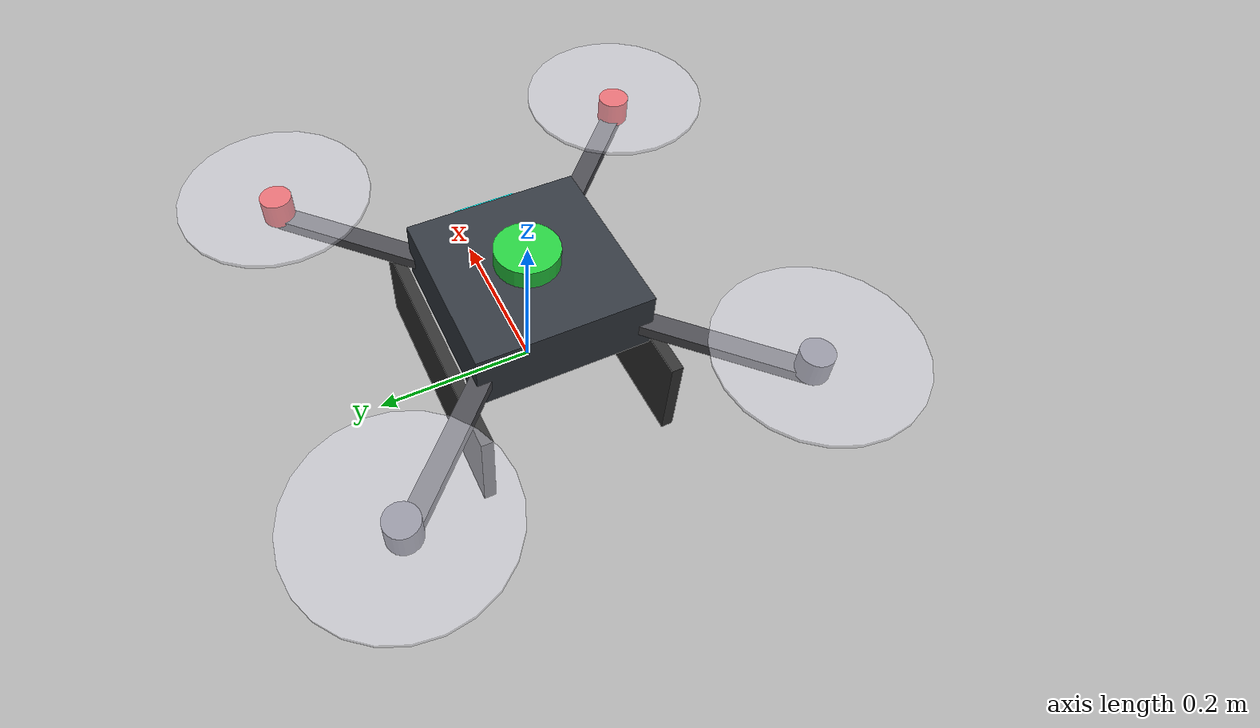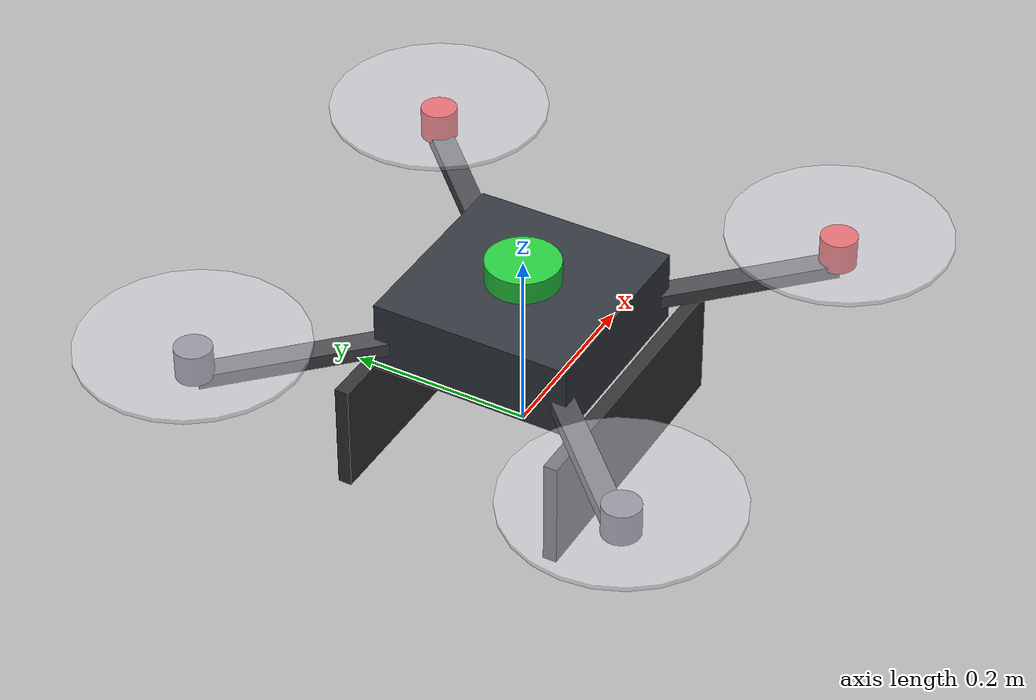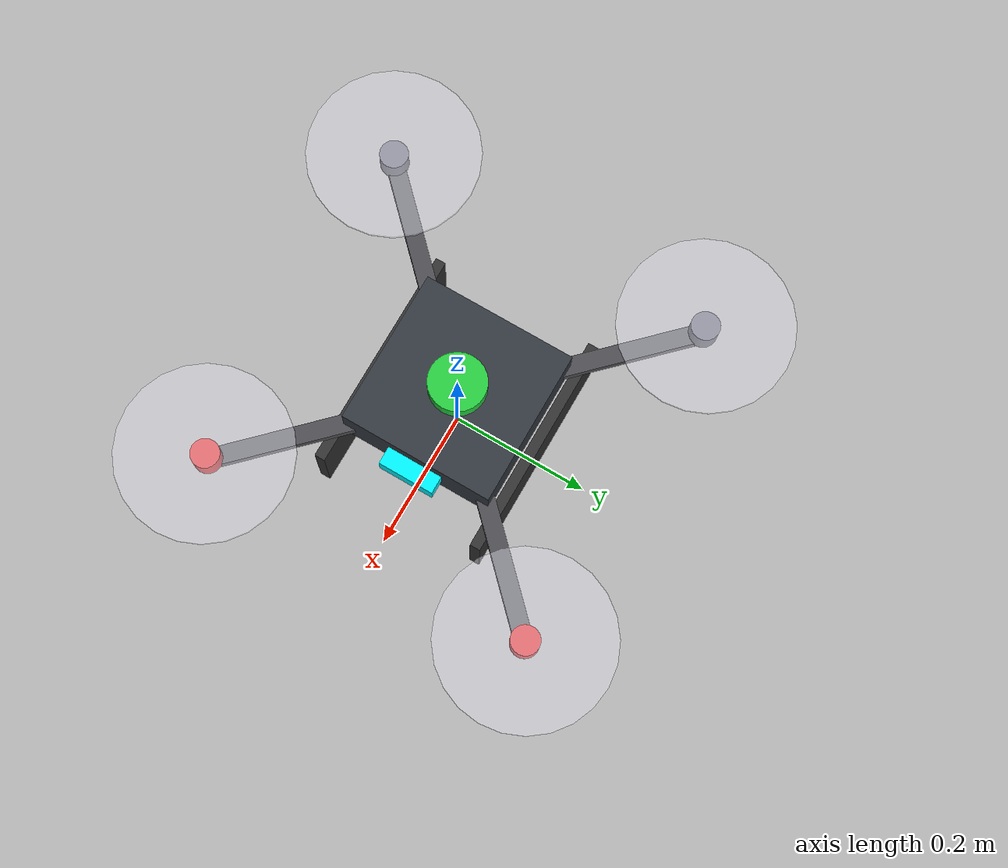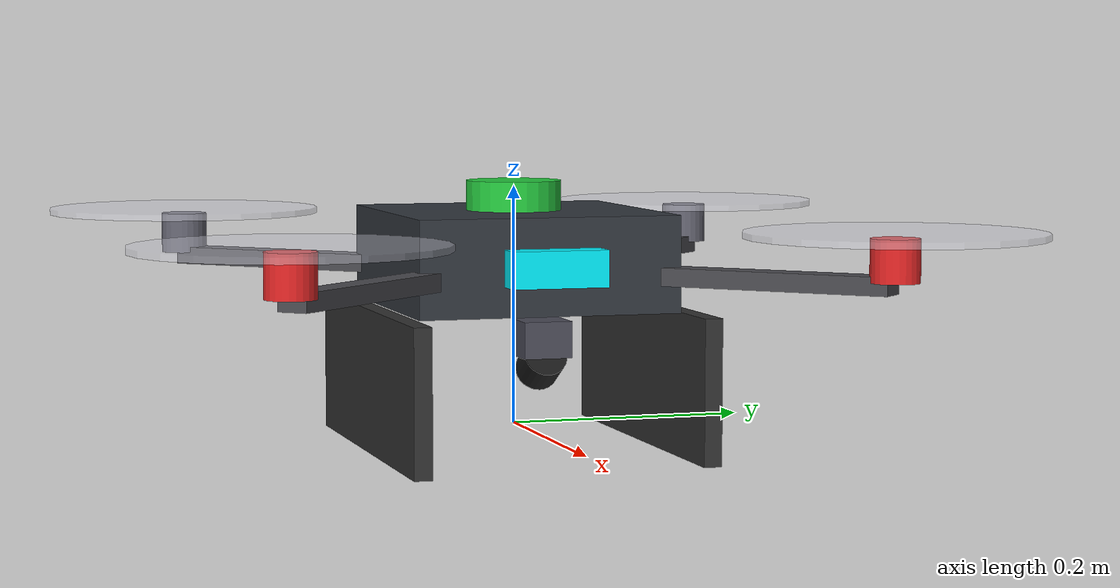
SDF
<?xml version="1.0" ?>
<sdf version="1.9">
  <model name="survey_drone">
    <static>false</static>
    <pose>0 0 0.1 0 0 0</pose>

    <!-- Main Chassis Link -->
    <link name="base_link">
      <inertial>
        <mass>1.8</mass>
        <inertia>
          <ixx>0.025</ixx>
          <ixy>0</ixy>
          <ixz>0</ixz>
          <iyy>0.025</iyy>
          <iyz>0</iyz>
          <izz>0.045</izz>
        </inertia>
      </inertial>

      <!-- Central Avionics Pod -->
      <visual name="body_visual">
        <pose>0 0 0.04 0 0 0</pose>
        <geometry><box><size>0.22 0.22 0.08</size></box></geometry>
        <material>
          <ambient>0.15 0.16 0.18 1</ambient>
          <diffuse>0.2 0.22 0.25 1</diffuse>
          <metalness>0.8</metalness>
          <roughness>0.3</roughness>
        </material>
      </visual>

      <!-- Top GPS / Telemetry Dome -->
      <visual name="gps_dome">
        <pose>0 0 0.09 0 0 0</pose>
        <geometry><cylinder><radius>0.04</radius><length>0.03</length></cylinder></geometry>
        <material><ambient>0.1 0.6 0.2 1</ambient><diffuse>0.15 0.8 0.25 1</diffuse></material>
      </visual>

      <!-- Front Heading Indicator (Vibrant Cyan/Green) -->
      <visual name="heading_indicator">
        <pose>0.12 0 0.04 0 0 0</pose>
        <geometry><box><size>0.03 0.08 0.03</size></box></geometry>
        <material><ambient>0.0 0.8 0.9 1</ambient><diffuse>0.0 0.95 1.0 1</diffuse></material>
      </visual>

      <!-- 4 Quadcopter Arms (Diagonal X-Configuration) -->
      <visual name="arm_front_right">
        <pose>0.14 -0.14 0.03 0 0 -0.785</pose>
        <geometry><box><size>0.28 0.025 0.015</size></box></geometry>
        <material><ambient>0.2 0.2 0.22 1</ambient><diffuse>0.3 0.3 0.32 1</diffuse></material>
      </visual>
      <visual name="arm_front_left">
        <pose>0.14 0.14 0.03 0 0 0.785</pose>
        <geometry><box><size>0.28 0.025 0.015</size></box></geometry>
        <material><ambient>0.2 0.2 0.22 1</ambient><diffuse>0.3 0.3 0.32 1</diffuse></material>
      </visual>
      <visual name="arm_back_right">
        <pose>-0.14 -0.14 0.03 0 0 0.785</pose>
        <geometry><box><size>0.28 0.025 0.015</size></box></geometry>
        <material><ambient>0.2 0.2 0.22 1</ambient><diffuse>0.3 0.3 0.32 1</diffuse></material>
      </visual>
      <visual name="arm_back_left">
        <pose>-0.14 0.14 0.03 0 0 -0.785</pose>
        <geometry><box><size>0.28 0.025 0.015</size></box></geometry>
        <material><ambient>0.2 0.2 0.22 1</ambient><diffuse>0.3 0.3 0.32 1</diffuse></material>
      </visual>

      <!-- 4 Motors -->
      <visual name="motor_fr"><pose>0.24 -0.24 0.05 0 0 0</pose><geometry><cylinder><radius>0.02</radius><length>0.035</length></cylinder></geometry><material><ambient>0.8 0.1 0.1 1</ambient><diffuse>0.9 0.15 0.15 1</diffuse></material></visual>
      <visual name="motor_fl"><pose>0.24 0.24 0.05 0 0 0</pose><geometry><cylinder><radius>0.02</radius><length>0.035</length></cylinder></geometry><material><ambient>0.8 0.1 0.1 1</ambient><diffuse>0.9 0.15 0.15 1</diffuse></material></visual>
      <visual name="motor_br"><pose>-0.24 -0.24 0.05 0 0 0</pose><geometry><cylinder><radius>0.02</radius><length>0.035</length></cylinder></geometry><material><ambient>0.3 0.3 0.35 1</ambient><diffuse>0.4 0.4 0.45 1</diffuse></material></visual>
      <visual name="motor_bl"><pose>-0.24 0.24 0.05 0 0 0</pose><geometry><cylinder><radius>0.02</radius><length>0.035</length></cylinder></geometry><material><ambient>0.3 0.3 0.35 1</ambient><diffuse>0.4 0.4 0.45 1</diffuse></material></visual>

      <!-- 4 Rotor Blades (Spin Discs) -->
      <visual name="rotor_fr"><pose>0.24 -0.24 0.07 0 0 0</pose><geometry><cylinder><radius>0.12</radius><length>0.005</length></cylinder></geometry><material><ambient>0.9 0.9 0.95 0.4</ambient><diffuse>0.9 0.9 0.95 0.4</diffuse></material></visual>
      <visual name="rotor_fl"><pose>0.24 0.24 0.07 0 0 0</pose><geometry><cylinder><radius>0.12</radius><length>0.005</length></cylinder></geometry><material><ambient>0.9 0.9 0.95 0.4</ambient><diffuse>0.9 0.9 0.95 0.4</diffuse></material></visual>
      <visual name="rotor_br"><pose>-0.24 -0.24 0.07 0 0 0</pose><geometry><cylinder><radius>0.12</radius><length>0.005</length></cylinder></geometry><material><ambient>0.9 0.9 0.95 0.4</ambient><diffuse>0.9 0.9 0.95 0.4</diffuse></material></visual>
      <visual name="rotor_bl"><pose>-0.24 0.24 0.07 0 0 0</pose><geometry><cylinder><radius>0.12</radius><length>0.005</length></cylinder></geometry><material><ambient>0.9 0.9 0.95 0.4</ambient><diffuse>0.9 0.9 0.95 0.4</diffuse></material></visual>

      <!-- Carbon Landing Skids -->
      <visual name="skid_left"><pose>0 0.12 -0.06 0 0 0</pose><geometry><box><size>0.32 0.015 0.12</size></box></geometry><material><ambient>0.1 0.1 0.1 1</ambient><diffuse>0.2 0.2 0.2 1</diffuse></material></visual>
      <visual name="skid_right"><pose>0 -0.12 -0.06 0 0 0</pose><geometry><box><size>0.32 0.015 0.12</size></box></geometry><material><ambient>0.1 0.1 0.1 1</ambient><diffuse>0.2 0.2 0.2 1</diffuse></material></visual>

      <!-- Downward Survey Gimbal Camera Housing (Pitch = -60 deg, FOV = 78 deg) -->
      <visual name="gimbal_mount">
        <pose>0.08 0 -0.02 0 0 0</pose>
        <geometry><box><size>0.04 0.04 0.03</size></box></geometry>
        <material><ambient>0.2 0.2 0.25 1</ambient><diffuse>0.3 0.3 0.35 1</diffuse></material>
      </visual>
      <visual name="camera_lens">
        <pose>0.08 0 -0.04 0 1.047 0</pose> <!-- 1.047 rad = 60 deg pitch down -->
        <geometry><cylinder><radius>0.018</radius><length>0.03</length></cylinder></geometry>
        <material><ambient>0.05 0.05 0.05 1</ambient><diffuse>0.1 0.1 0.1 1</diffuse><specular>0.9 0.9 0.9 1</specular></material>
      </visual>

      <!-- Collision Shape -->
      <collision name="base_collision">
        <pose>0 0 0.02 0 0 0</pose>
        <geometry><box><size>0.6 0.6 0.25</size></box></geometry>
      </collision>

      <!-- 1080p RGB Survey Camera Sensor             -->
      <sensor name="survey_camera" type="camera">
        <pose>0.08 0 -0.04 0 1.047 0</pose> <!-- Pitch down 60 deg (-60 deg in contract convention) -->
        <camera>
          <horizontal_fov>1.36136</horizontal_fov> <!-- 78.0 degrees in radians -->
          <image>
            <width>1920</width>
            <height>1080</height>
            <format>R8G8B8</format>
          </image>
          <clip>
            <near>0.1</near>
            <far>100.0</far>
          </clip>
        </camera>
        <always_on>1</always_on>
        <update_rate>30</update_rate>
        <visualize>true</visualize>
        <topic>/kissanvikas/drone/camera/image_raw</topic>
      </sensor>
    </link>

    <!-- Velocity Control / Navigation Plugin -->
    <plugin filename="gz-sim-velocity-control-system" name="gz::sim::systems::VelocityControl">
      <topic>/kissanvikas/drone/cmd_vel</topic>
      <odom_topic>/kissanvikas/drone/odometry</odom_topic>
    </plugin>

    <!-- Odometry Publisher Plugin -->
    <plugin filename="gz-sim-odometry-publisher-system" name="gz::sim::systems::OdometryPublisher">
      <odom_frame>world</odom_frame>
      <robot_base_frame>survey_drone/base_link</robot_base_frame>
      <odom_topic>/kissanvikas/drone/odometry</odom_topic>
      <tf_topic>/kissanvikas/drone/tf</tf_topic>
      <update_rate>50</update_rate>
    </plugin>
  </model>
</sdf>
